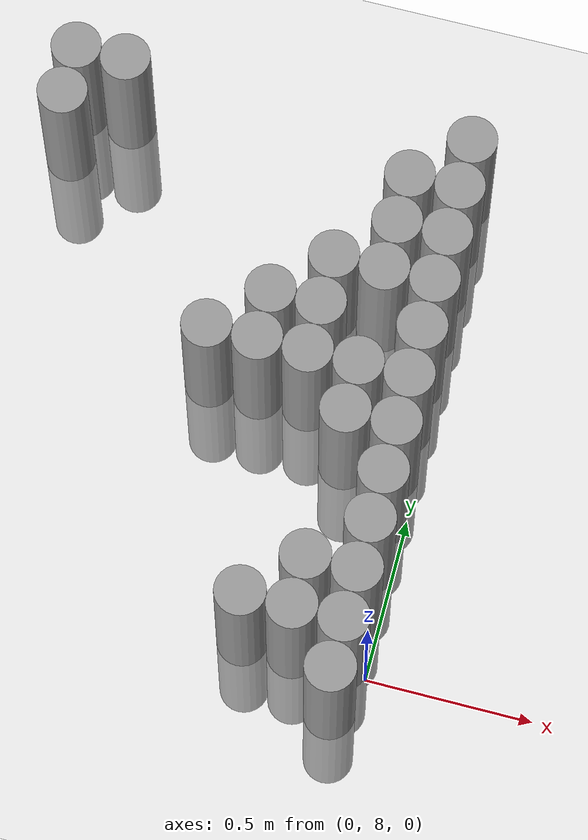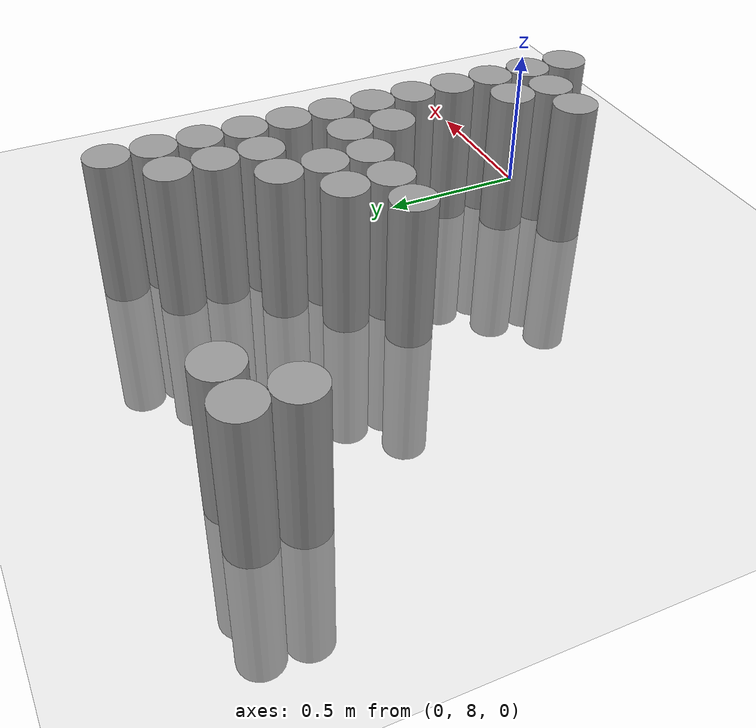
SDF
<sdf version="1.6">
 <world name="default">
  <model name="ground_plane">
   <static>1</static>
   <static>1</static>
   <link name="link">
    <collision name="collision">
     <geometry><plane><normal>0 0 1</normal><size>100 100</size></plane></geometry>
     <surface><friction><ode><mu>100</mu><mu2>50</mu2></ode></friction></surface>
    </collision>
    <visual name="visual">
     <cast_shadows>0</cast_shadows>
     <geometry><plane><normal>0 0 1</normal><size>100 100</size></plane></geometry>
     <material>
      <script><uri>file://media/materials/scripts/gazebo.material</uri><name>Gazebo/Grey</name></script>
     </material>
    </visual>
   </link>
  </model>
  <model name="unit_cylinder_160">
   <static>1</static>
   <pose>-1.275000 9.375000 0.000000 0.000000 0.000000 0.000000</pose>
   <link name="link">
    <inertial>
     <mass>1</mass>
     <inertia><ixx>0.145833</ixx><ixy>0</ixy><ixz>0</ixz><iyy>0.145833</iyy><iyz>0</iyz><izz>0.125</izz></inertia>
    </inertial>
    <collision name="collision">
     <geometry><cylinder><radius>0.075000</radius><length>1</length></cylinder></geometry>
    </collision>
    <visual name="visual">
     <geometry><cylinder><radius>0.075000</radius><length>1</length></cylinder></geometry>
     <material>
      <script><name>Gazebo/Grey</name><uri>file://media/materials/scripts/gazebo.material</uri></script>
     </material>
    </visual>
   </link>
  </model>
  <model name="unit_cylinder_161">
   <static>1</static>
   <pose>-1.275000 9.525000 0.000000 0.000000 0.000000 0.000000</pose>
   <link name="link">
    <inertial>
     <mass>1</mass>
     <inertia><ixx>0.145833</ixx><ixy>0</ixy><ixz>0</ixz><iyy>0.145833</iyy><iyz>0</iyz><izz>0.125</izz></inertia>
    </inertial>
    <collision name="collision">
     <geometry><cylinder><radius>0.075000</radius><length>1</length></cylinder></geometry>
    </collision>
    <visual name="visual">
     <geometry><cylinder><radius>0.075000</radius><length>1</length></cylinder></geometry>
     <material>
      <script><name>Gazebo/Grey</name><uri>file://media/materials/scripts/gazebo.material</uri></script>
     </material>
    </visual>
   </link>
  </model>
  <model name="unit_cylinder_164">
   <static>1</static>
   <pose>-1.125000 9.525000 0.000000 0.000000 0.000000 0.000000</pose>
   <link name="link">
    <inertial>
     <mass>1</mass>
     <inertia><ixx>0.145833</ixx><ixy>0</ixy><ixz>0</ixz><iyy>0.145833</iyy><iyz>0</iyz><izz>0.125</izz></inertia>
    </inertial>
    <collision name="collision">
     <geometry><cylinder><radius>0.075000</radius><length>1</length></cylinder></geometry>
    </collision>
    <visual name="visual">
     <geometry><cylinder><radius>0.075000</radius><length>1</length></cylinder></geometry>
     <material>
      <script><name>Gazebo/Grey</name><uri>file://media/materials/scripts/gazebo.material</uri></script>
     </material>
    </visual>
   </link>
  </model>
  <model name="unit_cylinder_167">
   <static>1</static>
   <pose>-0.675000 8.775000 0.000000 0.000000 0.000000 0.000000</pose>
   <link name="link">
    <inertial>
     <mass>1</mass>
     <inertia><ixx>0.145833</ixx><ixy>0</ixy><ixz>0</ixz><iyy>0.145833</iyy><iyz>0</iyz><izz>0.125</izz></inertia>
    </inertial>
    <collision name="collision">
     <geometry><cylinder><radius>0.075000</radius><length>1</length></cylinder></geometry>
    </collision>
    <visual name="visual">
     <geometry><cylinder><radius>0.075000</radius><length>1</length></cylinder></geometry>
     <material>
      <script><name>Gazebo/Grey</name><uri>file://media/materials/scripts/gazebo.material</uri></script>
     </material>
    </visual>
   </link>
  </model>
  <model name="unit_cylinder_170">
   <static>1</static>
   <pose>-0.525000 8.775000 0.000000 0.000000 0.000000 0.000000</pose>
   <link name="link">
    <inertial>
     <mass>1</mass>
     <inertia><ixx>0.145833</ixx><ixy>0</ixy><ixz>0</ixz><iyy>0.145833</iyy><iyz>0</iyz><izz>0.125</izz></inertia>
    </inertial>
    <collision name="collision">
     <geometry><cylinder><radius>0.075000</radius><length>1</length></cylinder></geometry>
    </collision>
    <visual name="visual">
     <geometry><cylinder><radius>0.075000</radius><length>1</length></cylinder></geometry>
     <material>
      <script><name>Gazebo/Grey</name><uri>file://media/materials/scripts/gazebo.material</uri></script>
     </material>
    </visual>
   </link>
  </model>
  <model name="unit_cylinder_171">
   <static>1</static>
   <pose>-0.525000 8.925000 0.000000 0.000000 0.000000 0.000000</pose>
   <link name="link">
    <inertial>
     <mass>1</mass>
     <inertia><ixx>0.145833</ixx><ixy>0</ixy><ixz>0</ixz><iyy>0.145833</iyy><iyz>0</iyz><izz>0.125</izz></inertia>
    </inertial>
    <collision name="collision">
     <geometry><cylinder><radius>0.075000</radius><length>1</length></cylinder></geometry>
    </collision>
    <visual name="visual">
     <geometry><cylinder><radius>0.075000</radius><length>1</length></cylinder></geometry>
     <material>
      <script><name>Gazebo/Grey</name><uri>file://media/materials/scripts/gazebo.material</uri></script>
     </material>
    </visual>
   </link>
  </model>
  <model name="unit_cylinder_175">
   <static>1</static>
   <pose>-0.375000 8.025000 0.000000 0.000000 0.000000 0.000000</pose>
   <link name="link">
    <inertial>
     <mass>1</mass>
     <inertia><ixx>0.145833</ixx><ixy>0</ixy><ixz>0</ixz><iyy>0.145833</iyy><iyz>0</iyz><izz>0.125</izz></inertia>
    </inertial>
    <collision name="collision">
     <geometry><cylinder><radius>0.075000</radius><length>1</length></cylinder></geometry>
    </collision>
    <visual name="visual">
     <geometry><cylinder><radius>0.075000</radius><length>1</length></cylinder></geometry>
     <material>
      <script><name>Gazebo/Grey</name><uri>file://media/materials/scripts/gazebo.material</uri></script>
     </material>
    </visual>
   </link>
  </model>
  <model name="unit_cylinder_176">
   <static>1</static>
   <pose>-0.375000 8.775000 0.000000 0.000000 0.000000 0.000000</pose>
   <link name="link">
    <inertial>
     <mass>1</mass>
     <inertia><ixx>0.145833</ixx><ixy>0</ixy><ixz>0</ixz><iyy>0.145833</iyy><iyz>0</iyz><izz>0.125</izz></inertia>
    </inertial>
    <collision name="collision">
     <geometry><cylinder><radius>0.075000</radius><length>1</length></cylinder></geometry>
    </collision>
    <visual name="visual">
     <geometry><cylinder><radius>0.075000</radius><length>1</length></cylinder></geometry>
     <material>
      <script><name>Gazebo/Grey</name><uri>file://media/materials/scripts/gazebo.material</uri></script>
     </material>
    </visual>
   </link>
  </model>
  <model name="unit_cylinder_177">
   <static>1</static>
   <pose>-0.375000 8.925000 0.000000 0.000000 0.000000 0.000000</pose>
   <link name="link">
    <inertial>
     <mass>1</mass>
     <inertia><ixx>0.145833</ixx><ixy>0</ixy><ixz>0</ixz><iyy>0.145833</iyy><iyz>0</iyz><izz>0.125</izz></inertia>
    </inertial>
    <collision name="collision">
     <geometry><cylinder><radius>0.075000</radius><length>1</length></cylinder></geometry>
    </collision>
    <visual name="visual">
     <geometry><cylinder><radius>0.075000</radius><length>1</length></cylinder></geometry>
     <material>
      <script><name>Gazebo/Grey</name><uri>file://media/materials/scripts/gazebo.material</uri></script>
     </material>
    </visual>
   </link>
  </model>
  <model name="unit_cylinder_178">
   <static>1</static>
   <pose>-0.375000 9.075000 0.000000 0.000000 0.000000 0.000000</pose>
   <link name="link">
    <inertial>
     <mass>1</mass>
     <inertia><ixx>0.145833</ixx><ixy>0</ixy><ixz>0</ixz><iyy>0.145833</iyy><iyz>0</iyz><izz>0.125</izz></inertia>
    </inertial>
    <collision name="collision">
     <geometry><cylinder><radius>0.075000</radius><length>1</length></cylinder></geometry>
    </collision>
    <visual name="visual">
     <geometry><cylinder><radius>0.075000</radius><length>1</length></cylinder></geometry>
     <material>
      <script><name>Gazebo/Grey</name><uri>file://media/materials/scripts/gazebo.material</uri></script>
     </material>
    </visual>
   </link>
  </model>
  <model name="unit_cylinder_188">
   <static>1</static>
   <pose>-0.225000 8.025000 0.000000 0.000000 0.000000 0.000000</pose>
   <link name="link">
    <inertial>
     <mass>1</mass>
     <inertia><ixx>0.145833</ixx><ixy>0</ixy><ixz>0</ixz><iyy>0.145833</iyy><iyz>0</iyz><izz>0.125</izz></inertia>
    </inertial>
    <collision name="collision">
     <geometry><cylinder><radius>0.075000</radius><length>1</length></cylinder></geometry>
    </collision>
    <visual name="visual">
     <geometry><cylinder><radius>0.075000</radius><length>1</length></cylinder></geometry>
     <material>
      <script><name>Gazebo/Grey</name><uri>file://media/materials/scripts/gazebo.material</uri></script>
     </material>
    </visual>
   </link>
  </model>
  <model name="unit_cylinder_189">
   <static>1</static>
   <pose>-0.225000 8.175000 0.000000 0.000000 0.000000 0.000000</pose>
   <link name="link">
    <inertial>
     <mass>1</mass>
     <inertia><ixx>0.145833</ixx><ixy>0</ixy><ixz>0</ixz><iyy>0.145833</iyy><iyz>0</iyz><izz>0.125</izz></inertia>
    </inertial>
    <collision name="collision">
     <geometry><cylinder><radius>0.075000</radius><length>1</length></cylinder></geometry>
    </collision>
    <visual name="visual">
     <geometry><cylinder><radius>0.075000</radius><length>1</length></cylinder></geometry>
     <material>
      <script><name>Gazebo/Grey</name><uri>file://media/materials/scripts/gazebo.material</uri></script>
     </material>
    </visual>
   </link>
  </model>
  <model name="unit_cylinder_190">
   <static>1</static>
   <pose>-0.225000 8.625000 0.000000 0.000000 0.000000 0.000000</pose>
   <link name="link">
    <inertial>
     <mass>1</mass>
     <inertia><ixx>0.145833</ixx><ixy>0</ixy><ixz>0</ixz><iyy>0.145833</iyy><iyz>0</iyz><izz>0.125</izz></inertia>
    </inertial>
    <collision name="collision">
     <geometry><cylinder><radius>0.075000</radius><length>1</length></cylinder></geometry>
    </collision>
    <visual name="visual">
     <geometry><cylinder><radius>0.075000</radius><length>1</length></cylinder></geometry>
     <material>
      <script><name>Gazebo/Grey</name><uri>file://media/materials/scripts/gazebo.material</uri></script>
     </material>
    </visual>
   </link>
  </model>
  <model name="unit_cylinder_191">
   <static>1</static>
   <pose>-0.225000 8.775000 0.000000 0.000000 0.000000 0.000000</pose>
   <link name="link">
    <inertial>
     <mass>1</mass>
     <inertia><ixx>0.145833</ixx><ixy>0</ixy><ixz>0</ixz><iyy>0.145833</iyy><iyz>0</iyz><izz>0.125</izz></inertia>
    </inertial>
    <collision name="collision">
     <geometry><cylinder><radius>0.075000</radius><length>1</length></cylinder></geometry>
    </collision>
    <visual name="visual">
     <geometry><cylinder><radius>0.075000</radius><length>1</length></cylinder></geometry>
     <material>
      <script><name>Gazebo/Grey</name><uri>file://media/materials/scripts/gazebo.material</uri></script>
     </material>
    </visual>
   </link>
  </model>
  <model name="unit_cylinder_192">
   <static>1</static>
   <pose>-0.225000 9.075000 0.000000 0.000000 0.000000 0.000000</pose>
   <link name="link">
    <inertial>
     <mass>1</mass>
     <inertia><ixx>0.145833</ixx><ixy>0</ixy><ixz>0</ixz><iyy>0.145833</iyy><iyz>0</iyz><izz>0.125</izz></inertia>
    </inertial>
    <collision name="collision">
     <geometry><cylinder><radius>0.075000</radius><length>1</length></cylinder></geometry>
    </collision>
    <visual name="visual">
     <geometry><cylinder><radius>0.075000</radius><length>1</length></cylinder></geometry>
     <material>
      <script><name>Gazebo/Grey</name><uri>file://media/materials/scripts/gazebo.material</uri></script>
     </material>
    </visual>
   </link>
  </model>
  <model name="unit_cylinder_193">
   <static>1</static>
   <pose>-0.225000 9.225000 0.000000 0.000000 0.000000 0.000000</pose>
   <link name="link">
    <inertial>
     <mass>1</mass>
     <inertia><ixx>0.145833</ixx><ixy>0</ixy><ixz>0</ixz><iyy>0.145833</iyy><iyz>0</iyz><izz>0.125</izz></inertia>
    </inertial>
    <collision name="collision">
     <geometry><cylinder><radius>0.075000</radius><length>1</length></cylinder></geometry>
    </collision>
    <visual name="visual">
     <geometry><cylinder><radius>0.075000</radius><length>1</length></cylinder></geometry>
     <material>
      <script><name>Gazebo/Grey</name><uri>file://media/materials/scripts/gazebo.material</uri></script>
     </material>
    </visual>
   </link>
  </model>
  <model name="unit_cylinder_194">
   <static>1</static>
   <pose>-0.225000 9.375000 0.000000 0.000000 0.000000 0.000000</pose>
   <link name="link">
    <inertial>
     <mass>1</mass>
     <inertia><ixx>0.145833</ixx><ixy>0</ixy><ixz>0</ixz><iyy>0.145833</iyy><iyz>0</iyz><izz>0.125</izz></inertia>
    </inertial>
    <collision name="collision">
     <geometry><cylinder><radius>0.075000</radius><length>1</length></cylinder></geometry>
    </collision>
    <visual name="visual">
     <geometry><cylinder><radius>0.075000</radius><length>1</length></cylinder></geometry>
     <material>
      <script><name>Gazebo/Grey</name><uri>file://media/materials/scripts/gazebo.material</uri></script>
     </material>
    </visual>
   </link>
  </model>
  <model name="unit_cylinder_213">
   <static>1</static>
   <pose>-0.075000 7.875000 0.000000 0.000000 0.000000 0.000000</pose>
   <link name="link">
    <inertial>
     <mass>1</mass>
     <inertia><ixx>0.145833</ixx><ixy>0</ixy><ixz>0</ixz><iyy>0.145833</iyy><iyz>0</iyz><izz>0.125</izz></inertia>
    </inertial>
    <collision name="collision">
     <geometry><cylinder><radius>0.075000</radius><length>1</length></cylinder></geometry>
    </collision>
    <visual name="visual">
     <geometry><cylinder><radius>0.075000</radius><length>1</length></cylinder></geometry>
     <material>
      <script><name>Gazebo/Grey</name><uri>file://media/materials/scripts/gazebo.material</uri></script>
     </material>
    </visual>
   </link>
  </model>
  <model name="unit_cylinder_214">
   <static>1</static>
   <pose>-0.075000 8.025000 0.000000 0.000000 0.000000 0.000000</pose>
   <link name="link">
    <inertial>
     <mass>1</mass>
     <inertia><ixx>0.145833</ixx><ixy>0</ixy><ixz>0</ixz><iyy>0.145833</iyy><iyz>0</iyz><izz>0.125</izz></inertia>
    </inertial>
    <collision name="collision">
     <geometry><cylinder><radius>0.075000</radius><length>1</length></cylinder></geometry>
    </collision>
    <visual name="visual">
     <geometry><cylinder><radius>0.075000</radius><length>1</length></cylinder></geometry>
     <material>
      <script><name>Gazebo/Grey</name><uri>file://media/materials/scripts/gazebo.material</uri></script>
     </material>
    </visual>
   </link>
  </model>
  <model name="unit_cylinder_215">
   <static>1</static>
   <pose>-0.075000 8.175000 0.000000 0.000000 0.000000 0.000000</pose>
   <link name="link">
    <inertial>
     <mass>1</mass>
     <inertia><ixx>0.145833</ixx><ixy>0</ixy><ixz>0</ixz><iyy>0.145833</iyy><iyz>0</iyz><izz>0.125</izz></inertia>
    </inertial>
    <collision name="collision">
     <geometry><cylinder><radius>0.075000</radius><length>1</length></cylinder></geometry>
    </collision>
    <visual name="visual">
     <geometry><cylinder><radius>0.075000</radius><length>1</length></cylinder></geometry>
     <material>
      <script><name>Gazebo/Grey</name><uri>file://media/materials/scripts/gazebo.material</uri></script>
     </material>
    </visual>
   </link>
  </model>
  <model name="unit_cylinder_216">
   <static>1</static>
   <pose>-0.075000 8.325000 0.000000 0.000000 0.000000 0.000000</pose>
   <link name="link">
    <inertial>
     <mass>1</mass>
     <inertia><ixx>0.145833</ixx><ixy>0</ixy><ixz>0</ixz><iyy>0.145833</iyy><iyz>0</iyz><izz>0.125</izz></inertia>
    </inertial>
    <collision name="collision">
     <geometry><cylinder><radius>0.075000</radius><length>1</length></cylinder></geometry>
    </collision>
    <visual name="visual">
     <geometry><cylinder><radius>0.075000</radius><length>1</length></cylinder></geometry>
     <material>
      <script><name>Gazebo/Grey</name><uri>file://media/materials/scripts/gazebo.material</uri></script>
     </material>
    </visual>
   </link>
  </model>
  <model name="unit_cylinder_217">
   <static>1</static>
   <pose>-0.075000 8.475000 0.000000 0.000000 0.000000 0.000000</pose>
   <link name="link">
    <inertial>
     <mass>1</mass>
     <inertia><ixx>0.145833</ixx><ixy>0</ixy><ixz>0</ixz><iyy>0.145833</iyy><iyz>0</iyz><izz>0.125</izz></inertia>
    </inertial>
    <collision name="collision">
     <geometry><cylinder><radius>0.075000</radius><length>1</length></cylinder></geometry>
    </collision>
    <visual name="visual">
     <geometry><cylinder><radius>0.075000</radius><length>1</length></cylinder></geometry>
     <material>
      <script><name>Gazebo/Grey</name><uri>file://media/materials/scripts/gazebo.material</uri></script>
     </material>
    </visual>
   </link>
  </model>
  <model name="unit_cylinder_218">
   <static>1</static>
   <pose>-0.075000 8.625000 0.000000 0.000000 0.000000 0.000000</pose>
   <link name="link">
    <inertial>
     <mass>1</mass>
     <inertia><ixx>0.145833</ixx><ixy>0</ixy><ixz>0</ixz><iyy>0.145833</iyy><iyz>0</iyz><izz>0.125</izz></inertia>
    </inertial>
    <collision name="collision">
     <geometry><cylinder><radius>0.075000</radius><length>1</length></cylinder></geometry>
    </collision>
    <visual name="visual">
     <geometry><cylinder><radius>0.075000</radius><length>1</length></cylinder></geometry>
     <material>
      <script><name>Gazebo/Grey</name><uri>file://media/materials/scripts/gazebo.material</uri></script>
     </material>
    </visual>
   </link>
  </model>
  <model name="unit_cylinder_219">
   <static>1</static>
   <pose>-0.075000 8.775000 0.000000 0.000000 0.000000 0.000000</pose>
   <link name="link">
    <inertial>
     <mass>1</mass>
     <inertia><ixx>0.145833</ixx><ixy>0</ixy><ixz>0</ixz><iyy>0.145833</iyy><iyz>0</iyz><izz>0.125</izz></inertia>
    </inertial>
    <collision name="collision">
     <geometry><cylinder><radius>0.075000</radius><length>1</length></cylinder></geometry>
    </collision>
    <visual name="visual">
     <geometry><cylinder><radius>0.075000</radius><length>1</length></cylinder></geometry>
     <material>
      <script><name>Gazebo/Grey</name><uri>file://media/materials/scripts/gazebo.material</uri></script>
     </material>
    </visual>
   </link>
  </model>
  <model name="unit_cylinder_220">
   <static>1</static>
   <pose>-0.075000 8.925000 0.000000 0.000000 0.000000 0.000000</pose>
   <link name="link">
    <inertial>
     <mass>1</mass>
     <inertia><ixx>0.145833</ixx><ixy>0</ixy><ixz>0</ixz><iyy>0.145833</iyy><iyz>0</iyz><izz>0.125</izz></inertia>
    </inertial>
    <collision name="collision">
     <geometry><cylinder><radius>0.075000</radius><length>1</length></cylinder></geometry>
    </collision>
    <visual name="visual">
     <geometry><cylinder><radius>0.075000</radius><length>1</length></cylinder></geometry>
     <material>
      <script><name>Gazebo/Grey</name><uri>file://media/materials/scripts/gazebo.material</uri></script>
     </material>
    </visual>
   </link>
  </model>
  <model name="unit_cylinder_221">
   <static>1</static>
   <pose>-0.075000 9.075000 0.000000 0.000000 0.000000 0.000000</pose>
   <link name="link">
    <inertial>
     <mass>1</mass>
     <inertia><ixx>0.145833</ixx><ixy>0</ixy><ixz>0</ixz><iyy>0.145833</iyy><iyz>0</iyz><izz>0.125</izz></inertia>
    </inertial>
    <collision name="collision">
     <geometry><cylinder><radius>0.075000</radius><length>1</length></cylinder></geometry>
    </collision>
    <visual name="visual">
     <geometry><cylinder><radius>0.075000</radius><length>1</length></cylinder></geometry>
     <material>
      <script><name>Gazebo/Grey</name><uri>file://media/materials/scripts/gazebo.material</uri></script>
     </material>
    </visual>
   </link>
  </model>
  <model name="unit_cylinder_222">
   <static>1</static>
   <pose>-0.075000 9.225000 0.000000 0.000000 0.000000 0.000000</pose>
   <link name="link">
    <inertial>
     <mass>1</mass>
     <inertia><ixx>0.145833</ixx><ixy>0</ixy><ixz>0</ixz><iyy>0.145833</iyy><iyz>0</iyz><izz>0.125</izz></inertia>
    </inertial>
    <collision name="collision">
     <geometry><cylinder><radius>0.075000</radius><length>1</length></cylinder></geometry>
    </collision>
    <visual name="visual">
     <geometry><cylinder><radius>0.075000</radius><length>1</length></cylinder></geometry>
     <material>
      <script><name>Gazebo/Grey</name><uri>file://media/materials/scripts/gazebo.material</uri></script>
     </material>
    </visual>
   </link>
  </model>
  <model name="unit_cylinder_223">
   <static>1</static>
   <pose>-0.075000 9.375000 0.000000 0.000000 0.000000 0.000000</pose>
   <link name="link">
    <inertial>
     <mass>1</mass>
     <inertia><ixx>0.145833</ixx><ixy>0</ixy><ixz>0</ixz><iyy>0.145833</iyy><iyz>0</iyz><izz>0.125</izz></inertia>
    </inertial>
    <collision name="collision">
     <geometry><cylinder><radius>0.075000</radius><length>1</length></cylinder></geometry>
    </collision>
    <visual name="visual">
     <geometry><cylinder><radius>0.075000</radius><length>1</length></cylinder></geometry>
     <material>
      <script><name>Gazebo/Grey</name><uri>file://media/materials/scripts/gazebo.material</uri></script>
     </material>
    </visual>
   </link>
  </model>
  <model name="unit_cylinder_224">
   <static>1</static>
   <pose>-0.075000 9.525000 0.000000 0.000000 0.000000 0.000000</pose>
   <link name="link">
    <inertial>
     <mass>1</mass>
     <inertia><ixx>0.145833</ixx><ixy>0</ixy><ixz>0</ixz><iyy>0.145833</iyy><iyz>0</iyz><izz>0.125</izz></inertia>
    </inertial>
    <collision name="collision">
     <geometry><cylinder><radius>0.075000</radius><length>1</length></cylinder></geometry>
    </collision>
    <visual name="visual">
     <geometry><cylinder><radius>0.075000</radius><length>1</length></cylinder></geometry>
     <material>
      <script><name>Gazebo/Grey</name><uri>file://media/materials/scripts/gazebo.material</uri></script>
     </material>
    </visual>
   </link>
  </model>
 </world>
</sdf>
